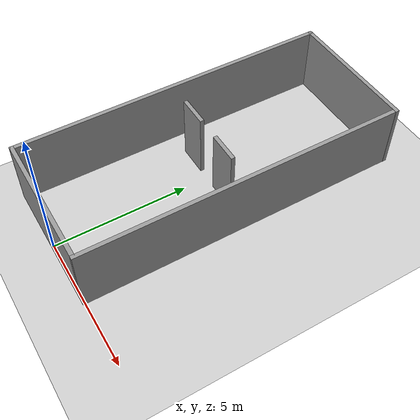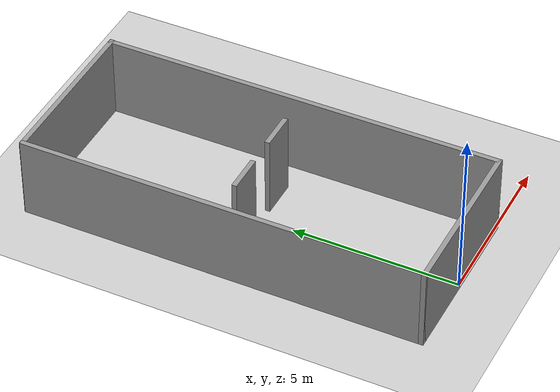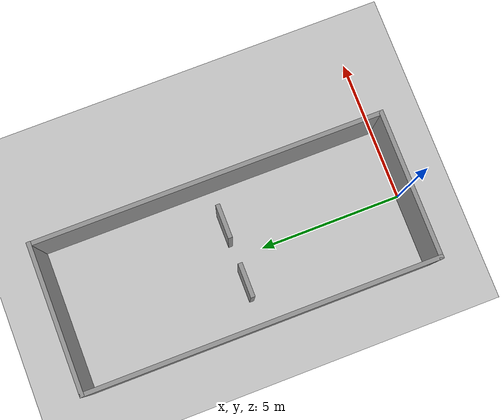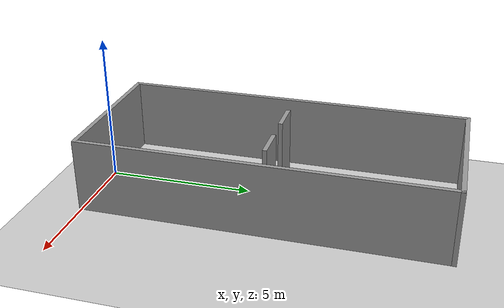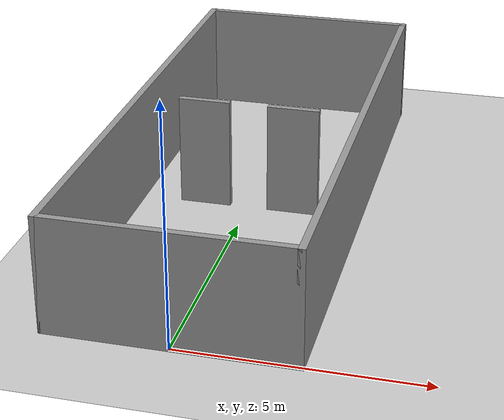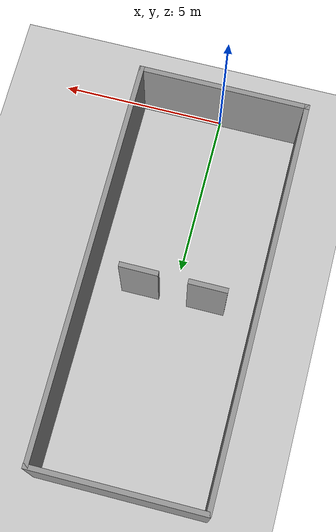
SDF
<sdf version="1.6">
 <world name="default">
  <light name="sun" type="directional">
   <pose>0 0 10 0 -0 0</pose>
   <diffuse>0.8 0.8 0.8 1</diffuse>
   <specular>0.2 0.2 0.2 1</specular>
   <attenuation>
    <range>1000</range>
    <constant>0.9</constant>
    <linear>0.01</linear>
    <quadratic>0.001</quadratic>
   </attenuation>
   <direction>-0.5 0.1 -0.9</direction>
  </light>
  <model name="ground_plane">
   <static>1</static>
   <link name="link">
    <collision name="collision">
     <geometry><plane><normal>0 0 1</normal><size>100 100</size></plane></geometry>
     <surface><friction><ode><mu>100</mu><mu2>50</mu2></ode></friction></surface>
    </collision>
    <visual name="visual">
     <cast_shadows>0</cast_shadows>
     <geometry><plane><normal>0 0 1</normal><size>100 100</size></plane></geometry>
     <material>
      <script><uri>file://media/materials/scripts/gazebo.material</uri><name>Gazebo/Grey</name></script>
     </material>
    </visual>
   </link>
  </model>
  <gravity>0 0 -9.8</gravity>
  <magnetic_field>6e-06 2.3e-05 -4.2e-05</magnetic_field>
  <atmosphere type="adiabatic"/>
  <physics name="default_physics" default="0" type="ode">
   <max_step_size>0.001</max_step_size>
   <real_time_factor>1</real_time_factor>
   <real_time_update_rate>1000</real_time_update_rate>
  </physics>
  <scene><ambient>0.4 0.4 0.4 1</ambient><background>0.7 0.7 0.7 1</background><shadows>1</shadows></scene>
  <audio><device>default</device></audio>
  <spherical_coordinates>
   <surface_model>EARTH_WGS84</surface_model>
   <latitude_deg>0</latitude_deg>
   <longitude_deg>0</longitude_deg>
   <elevation>0</elevation>
   <heading_deg>0</heading_deg>
  </spherical_coordinates>
  <model name="tunnelwld">
   <pose>0 6 0 0 -0 0</pose>
   <link name="Wall_43">
    <collision name="Wall_43_Collision">
     <geometry><box><size>12.15 0.15 2.5</size></box></geometry>
     <pose>0 0 1.25 0 -0 0</pose>
    </collision>
    <visual name="Wall_43_Visual">
     <pose>0 0 1.25 0 -0 0</pose>
     <geometry><box><size>12.15 0.15 2.5</size></box></geometry>
     <material>
      <script><uri>file://media/materials/scripts/gazebo.material</uri><name>Gazebo/Grey</name></script>
      <ambient>1 1 1 1</ambient>
     </material>
     <meta><layer>0</layer></meta>
    </visual>
    <pose>-2.5 0 0 0 -0 1.5708</pose>
   </link>
   <link name="Wall_45">
    <collision name="Wall_45_Collision">
     <geometry><box><size>12.15 0.15 2.5</size></box></geometry>
     <pose>0 0 1.25 0 -0 0</pose>
    </collision>
    <visual name="Wall_45_Visual">
     <pose>0 0 1.25 0 -0 0</pose>
     <geometry><box><size>12.15 0.15 2.5</size></box></geometry>
     <material>
      <script><uri>file://media/materials/scripts/gazebo.material</uri><name>Gazebo/Grey</name></script>
      <ambient>1 1 1 1</ambient>
     </material>
     <meta><layer>0</layer></meta>
    </visual>
    <pose>2.5 0 0 0 -0 1.5708</pose>
   </link>
   <link name="Wall_47">
    <collision name="Wall_47_Collision">
     <geometry><box><size>1.15 0.15 2.5</size></box></geometry>
     <pose>0 0 1.25 0 -0 0</pose>
    </collision>
    <visual name="Wall_47_Visual">
     <pose>0 0 1.25 0 -0 0</pose>
     <geometry><box><size>1.15 0.15 2.5</size></box></geometry>
     <material>
      <script><uri>file://media/materials/scripts/gazebo.material</uri><name>Gazebo/Grey</name></script>
      <ambient>1 1 1 1</ambient>
     </material>
     <meta><layer>0</layer></meta>
    </visual>
    <pose>-1 0 0 0 -0 0</pose>
   </link>
   <link name="Wall_49">
    <collision name="Wall_49_Collision">
     <geometry><box><size>1.15 0.15 2.5</size></box></geometry>
     <pose>0 0 1.25 0 -0 0</pose>
    </collision>
    <visual name="Wall_49_Visual">
     <pose>0 0 1.25 0 -0 0</pose>
     <geometry><box><size>1.15 0.15 2.5</size></box></geometry>
     <material>
      <script><uri>file://media/materials/scripts/gazebo.material</uri><name>Gazebo/Grey</name></script>
      <ambient>1 1 1 1</ambient>
     </material>
     <meta><layer>0</layer></meta>
    </visual>
    <pose>1 0 0 0 -0 0</pose>
   </link>
   <static>1</static>
  </model>
  <model name="end">
   <pose>0.006597 12.0164 0 0 -0 0</pose>
   <link name="Wall_0">
    <collision name="Wall_0_Collision">
     <geometry><box><size>5.15 0.15 2.5</size></box></geometry>
     <pose>0 0 1.25 0 -0 0</pose>
    </collision>
    <visual name="Wall_0_Visual">
     <pose>0 0 1.25 0 -0 0</pose>
     <geometry><box><size>5.15 0.15 2.5</size></box></geometry>
     <material>
      <script><uri>file://media/materials/scripts/gazebo.material</uri><name>Gazebo/Grey</name></script>
      <ambient>1 1 1 1</ambient>
     </material>
     <meta><layer>0</layer></meta>
    </visual>
   </link>
   <static>1</static>
  </model>
  <model name="wall">
   <link name="Wall_0">
    <collision name="Wall_0_Collision">
     <geometry><box><size>5.15 0.15 2.5</size></box></geometry>
     <pose>0 0 1.25 0 -0 0</pose>
    </collision>
    <visual name="Wall_0_Visual">
     <pose>0 0 1.25 0 -0 0</pose>
     <geometry><box><size>5.15 0.15 2.5</size></box></geometry>
     <material>
      <script><uri>file://media/materials/scripts/gazebo.material</uri><name>Gazebo/Grey</name></script>
      <ambient>1 1 1 1</ambient>
     </material>
     <meta><layer>0</layer></meta>
    </visual>
   </link>
   <static>1</static>
  </model>
 </world>
</sdf>
